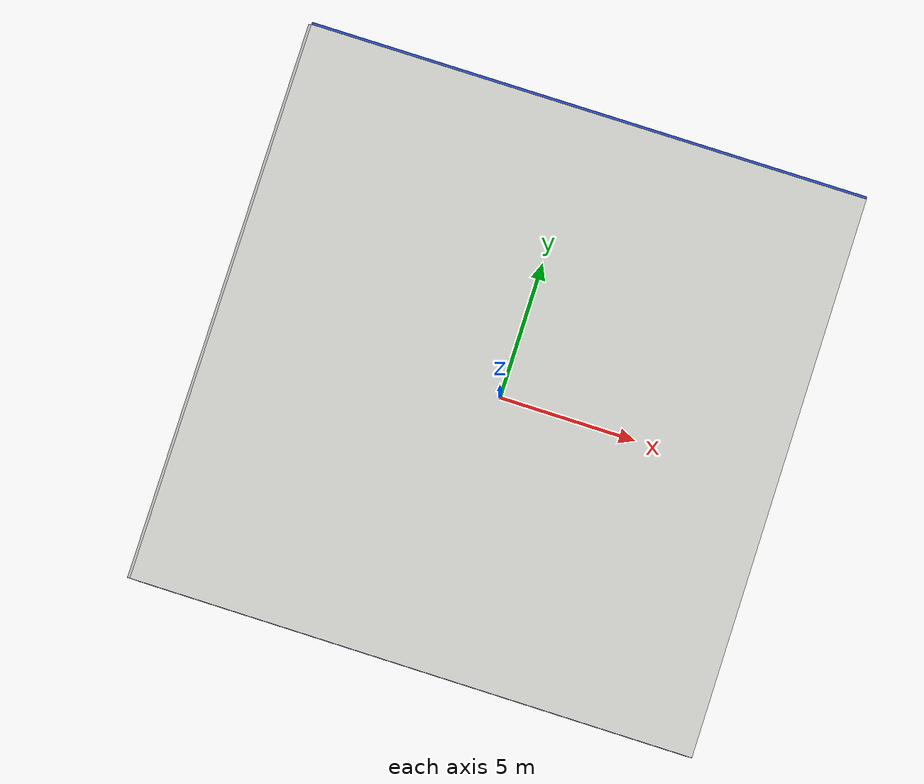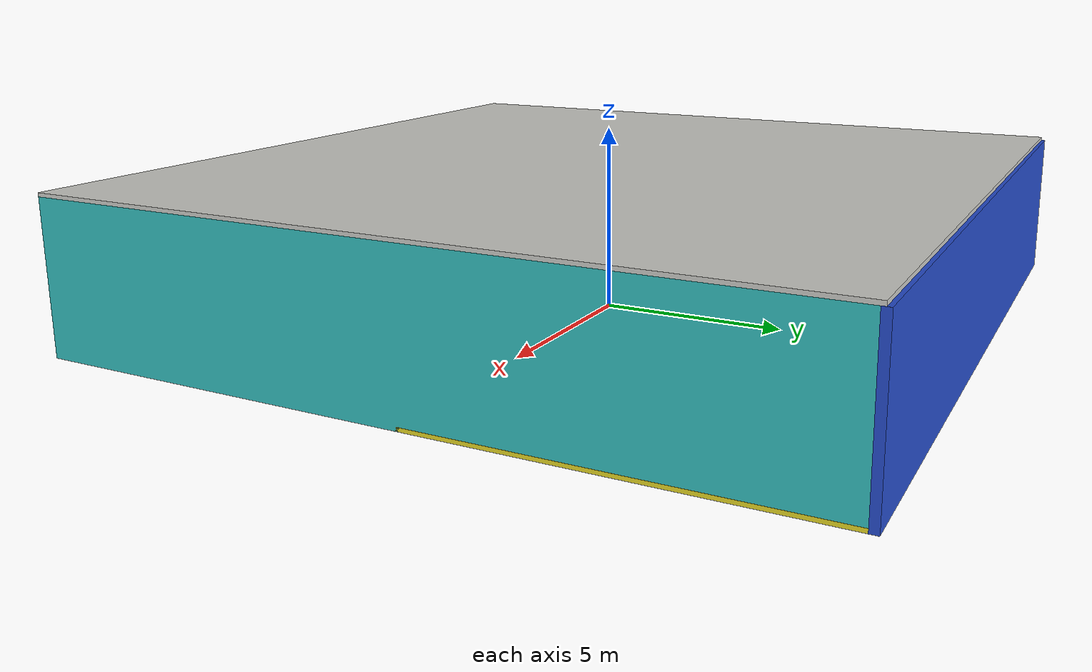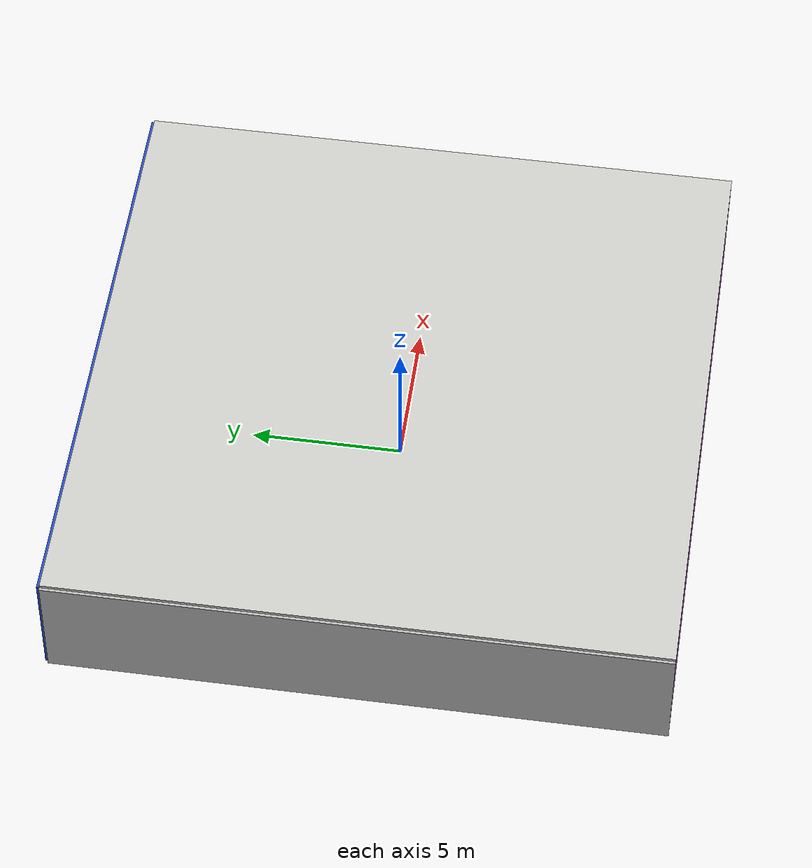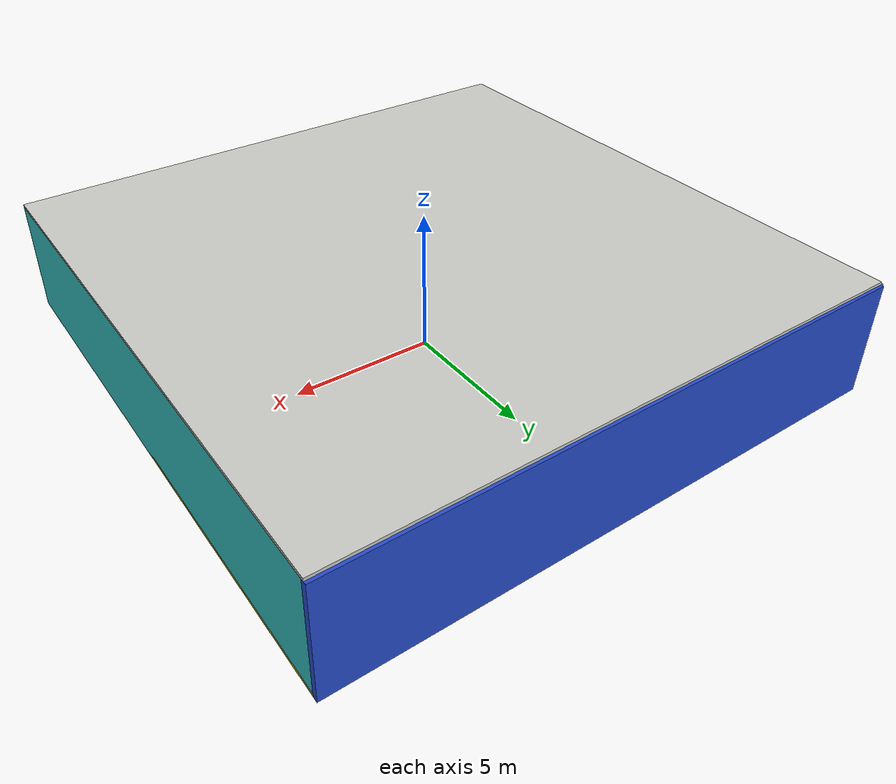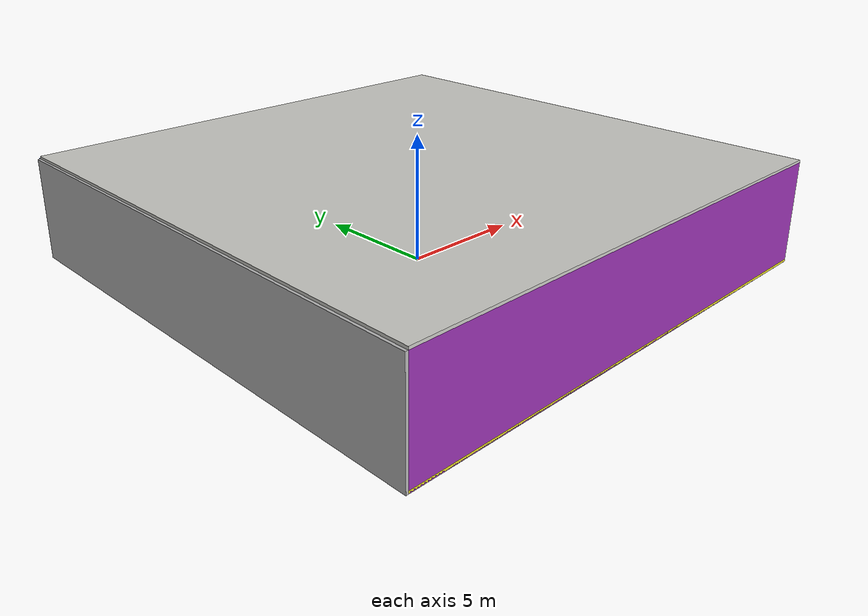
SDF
<sdf version="1.4">
 <world name="default">
  <physics type="ode">
   <max_step_size>0.001</max_step_size>
   <real_time_factor>1</real_time_factor>
   <real_time_update_rate>1000</real_time_update_rate>
   <gravity>0 0 -9.8</gravity>
  </physics>
  <scene><ambient>0.4 0.4 0.4 1</ambient><background>0.7 0.7 0.7 1</background><shadows>1</shadows></scene>
  <model name="Surrounding">
   <static>1</static>
   <link name="Ceiling">
    <collision name="Ceiling_Collision"><geometry><box><size>20 20 0.1</size></box></geometry></collision>
    <visual name="Ceiling_Visual">
     <geometry><box><size>20 20 0.1</size></box></geometry>
     <material>
      <script><uri>file://media/materials/scripts/gazebo.material</uri><name>Gazebo/CeilingTiled</name></script>
     </material>
    </visual>
    <pose>0 0 4.05 0 0 0</pose>
   </link>
   <link name="Wall_South">
    <collision name="Wall_South_Collision">
     <geometry><box><size>20 0 4</size></box></geometry>
     <pose>0 0 2 0 -0 0</pose>
    </collision>
    <visual name="Wall_South_Visual">
     <pose>0 0 2 0 -0 0</pose>
     <geometry><box><size>20 0 4</size></box></geometry>
     <material>
      <script><uri>file://media/materials/scripts/gazebo.material</uri><name>Gazebo/Purple</name></script>
     </material>
    </visual>
    <velocity_decay><linear>0</linear><angular>0</angular></velocity_decay>
    <pose>0 -10 0 0 -0 0</pose>
   </link>
   <link name="Wall_East">
    <collision name="Wall_21_Collision">
     <geometry><box><size>20 0 4</size></box></geometry>
     <pose>0 0 2 0 -0 0</pose>
    </collision>
    <visual name="Wall_21_Visual">
     <pose>0 0 2 0 -0 0</pose>
     <geometry><box><size>20 0 4</size></box></geometry>
     <material>
      <script>
       <uri>file://media/materials/scripts/gazebo.material</uri>
       <name>Gazebo/TurquoiseGlowOutline</name>
      </script>
     </material>
    </visual>
    <velocity_decay><linear>0</linear><angular>0</angular></velocity_decay>
    <pose>10 0 0 0 -0 1.5708</pose>
   </link>
   <link name="Wall_North">
    <collision name="Wall_22_Collision">
     <geometry><box><size>20 0.2 4</size></box></geometry>
     <pose>0 0 2 0 -0 0</pose>
    </collision>
    <visual name="Wall_22_Visual">
     <pose>0 0 2 0 -0 0</pose>
     <geometry><box><size>20 0.2 4</size></box></geometry>
     <material>
      <script><uri>file://media/materials/scripts/gazebo.material</uri><name>Gazebo/Blue</name></script>
     </material>
    </visual>
    <velocity_decay><linear>0</linear><angular>0</angular></velocity_decay>
    <pose>0 10 0 0 -0 0</pose>
   </link>
   <link name="Wall_West">
    <collision name="Wall_23_Collision">
     <geometry><box><size>20 0.2 4</size></box></geometry>
     <pose>0 0 2 0 -0 0</pose>
    </collision>
    <visual name="Wall_23_Visual">
     <pose>0 0 2 0 -0 0</pose>
     <geometry><box><size>20 0.2 4</size></box></geometry>
     <material>
      <script><uri>file://media/materials/scripts/gazebo.material</uri><name>Gazebo/PioneerBody</name></script>
     </material>
    </visual>
    <velocity_decay><linear>0</linear><angular>0</angular></velocity_decay>
    <pose>-10 0 0 0 0 -1.5708</pose>
   </link>
   <link name="Ground_link">
    <collision name="collision">
     <pose>0 0 .05 0 -0 0</pose>
     <geometry><box><size>20 20 0.1</size></box></geometry>
    </collision>
    <visual name="visual">
     <pose>0 0 .05 0 -0 0</pose>
     <geometry><box><size>20 20 0.1</size></box></geometry>
     <material>
      <script><uri>file://media/materials/scripts/gazebo.material</uri><name>Gazebo/YellowGlow</name></script>
     </material>
    </visual>
   </link>
   <static>1</static>
  </model>
  <spherical_coordinates>
   <surface_model>EARTH_WGS84</surface_model>
   <latitude_deg>0</latitude_deg>
   <longitude_deg>0</longitude_deg>
   <elevation>0</elevation>
   <heading_deg>0</heading_deg>
  </spherical_coordinates>
  <light name="lightball_0" type="diffuse">
   <diffuse>0.8 0.8 0.8 1</diffuse>
   <specular>0.2 0.2 0.2 1</specular>
   <attenuation>
    <range>100</range>
    <constant>0.7</constant>
    <linear>0.01</linear>
    <quadratic>0.001</quadratic>
   </attenuation>
   <direction>-0.5 0.1 -0.9</direction>
   <pose>-6.15163465067 6.26785162801 1.5504889499 0 0 0</pose>
  </light>
  <light name="lightball_1" type="diffuse">
   <diffuse>0.8 0.8 0.8 1</diffuse>
   <specular>0.2 0.2 0.2 1</specular>
   <attenuation>
    <range>100</range>
    <constant>0.7</constant>
    <linear>0.01</linear>
    <quadratic>0.001</quadratic>
   </attenuation>
   <direction>-0.5 0.1 -0.9</direction>
   <pose>-3.36927430912 2.75510715056 0.597977758198 0 0 0</pose>
  </light>
  <include>
   <uri>model://robocup_3Dsim_goal</uri>
   <pose>-8.62881665166 -4.69013285859 0 0 0 1.2505541688</pose>
  </include>
  <include><uri>model://cabinet</uri><pose>-8.08183726726 1.24671017523 0 0 0 0.601744146022</pose></include>
  <include><uri>model://table</uri><pose>-8.09896570533 5.52920623762 0 0 0 2.57026606474</pose></include>
  <include>
   <uri>model://robocup_3Dsim_goal</uri>
   <pose>-4.7504643816 -1.55709965269 0 0 0 2.42709451111</pose>
  </include>
  <include><uri>model://cabinet</uri><pose>-1.89331245042 -5.29923934636 0 0 0 2.01507913073</pose></include>
  <include>
   <uri>model://construction_cone</uri>
   <pose>7.33864930665 -7.97963034712 0 0 0 1.37223544437</pose>
  </include>
 </world>
</sdf>

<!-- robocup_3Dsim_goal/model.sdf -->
<sdf version="1.5">
  <model name="robocup_3d_goal">
    <static>true</static>
    <link name="left_post">
      <pose>0 1.05 0.45 0 0 0</pose>
      <collision name="collision">
        <geometry>
          <cylinder>
            <radius>0.05</radius>
            <length>0.9</length>
          </cylinder>
        </geometry>
      </collision>
      <visual name="visual">
        <geometry>
          <cylinder>
            <radius>0.05</radius>
            <length>0.9</length>
          </cylinder>
        </geometry>
        <material>
          <script>
            <uri>file://media/materials/scripts/gazebo.material</uri>
            <name>Gazebo/ZincYellow</name>
          </script>
        </material>
      </visual>
    </link>
    <link name="left_support_horiz_lower">
      <pose>0.30 1.05 0.01 0 0 0</pose>
      <collision name="collision">
        <geometry>
          <box>
            <size>0.50 0.02 0.02</size>
          </box>
        </geometry>
      </collision>
      <visual name="visual">
        <geometry>
          <box>
            <size>0.50 0.02 0.02</size>
          </box>
        </geometry>
        <material>
          <script>
            <uri>file://media/materials/scripts/gazebo.material</uri>
            <name>Gazebo/White</name>
          </script>
        </material>
      </visual>
    </link>
    <link name="left_support_horiz_upper">
      <pose>0.30 1.05 0.79 0 0 0</pose>
      <collision name="collision">
        <geometry>
          <box>
            <size>0.50 0.02 0.02</size>
          </box>
        </geometry>
      </collision>
      <visual name="visual">
        <geometry>
          <box>
            <size>0.50 0.02 0.02</size>
          </box>
        </geometry>
        <material>
          <script>
            <uri>file://media/materials/scripts/gazebo.material</uri>
            <name>Gazebo/White</name>
          </script>
        </material>
      </visual>
    </link>
    <link name="left_support_vertical">
      <pose>0.56 1.05 0.4 0 1.5708 0</pose>
      <collision name="collision">
        <geometry>
          <box>
            <size>0.80 0.02 0.02</size>
          </box>
        </geometry>
      </collision>
      <visual name="visual">
        <geometry>
          <box>
            <size>0.80 0.02 0.02</size>
          </box>
        </geometry>
        <material>
          <script>
            <uri>file://media/materials/scripts/gazebo.material</uri>
            <name>Gazebo/White</name>
          </script>
        </material>
      </visual>
    </link>
    <link name="right_support_horiz_lower">
      <pose>0.30 -1.05 0.01 0 0 0</pose>
      <collision name="collision">
        <geometry>
          <box>
            <size>0.50 0.02 0.02</size>
          </box>
        </geometry>
      </collision>
      <visual name="visual">
        <geometry>
          <box>
            <size>0.50 0.02 0.02</size>
          </box>
        </geometry>
        <material>
          <script>
            <uri>file://media/materials/scripts/gazebo.material</uri>
            <name>Gazebo/White</name>
          </script>
        </material>
      </visual>
    </link>
    <link name="right_support_horiz_upper">
      <pose>0.30 -1.05 0.79 0 0 0</pose>
      <collision name="collision">
        <geometry>
          <box>
            <size>0.50 0.02 0.02</size>
          </box>
        </geometry>
      </collision>
      <visual name="visual">
        <geometry>
          <box>
            <size>0.50 0.02 0.02</size>
          </box>
        </geometry>
        <material>
          <script>
            <uri>file://media/materials/scripts/gazebo.material</uri>
            <name>Gazebo/White</name>
          </script>
        </material>
      </visual>
    </link>
    <link name="right_support_vertical">
      <pose>0.56 -1.05 0.4 0 1.5708 0</pose>
      <collision name="collision">
        <geometry>
          <box>
            <size>0.80 0.02 0.02</size>
          </box>
        </geometry>
      </collision>
      <visual name="visual">
        <geometry>
          <box>
            <size>0.80 0.02 0.02</size>
          </box>
        </geometry>
        <material>
          <script>
            <uri>file://media/materials/scripts/gazebo.material</uri>
            <name>Gazebo/White</name>
          </script>
        </material>
      </visual>
    </link>
    <link name="center_support_horiz_lower">
      <pose>0.56 0 0.01 0 1.5708 0</pose>
      <collision name="collision">
        <geometry>
          <box>
            <size>0.02 2.08 0.02</size>
          </box>
        </geometry>
      </collision>
      <visual name="visual">
        <geometry>
          <box>
            <size>0.02 2.08 0.02</size>
          </box>
        </geometry>
        <material>
          <script>
            <uri>file://media/materials/scripts/gazebo.material</uri>
            <name>Gazebo/White</name>
          </script>
        </material>
      </visual>
    </link>
    <link name="center_support_horiz_upper">
      <pose>0.56 0 0.79 0 1.5708 0</pose>
      <collision name="collision">
        <geometry>
          <box>
            <size>0.02 2.08 0.02</size>
          </box>
        </geometry>
      </collision>
      <visual name="visual">
        <geometry>
          <box>
            <size>0.02 2.08 0.02</size>
          </box>
        </geometry>
        <material>
          <script>
            <uri>file://media/materials/scripts/gazebo.material</uri>
            <name>Gazebo/White</name>
          </script>
        </material>
      </visual>
    </link>
    <link name="right_post">
      <pose>0 -1.05 0.45 0 0 0</pose>
      <collision name="collision">
        <geometry>
          <cylinder>
            <radius>0.05</radius>
            <length>0.9</length>
          </cylinder>
        </geometry>
      </collision>
      <visual name="visual">
        <geometry>
          <cylinder>
            <radius>0.05</radius>
            <length>0.9</length>
          </cylinder>
        </geometry>
        <material>
          <script>
            <uri>file://media/materials/scripts/gazebo.material</uri>
            <name>Gazebo/ZincYellow</name>
          </script>
        </material>
      </visual>
    </link>
    <link name="crossbar">
      <pose>0 0 0.85 1.57 1.57 0</pose>
      <collision name="collision">
        <geometry>
          <cylinder>
            <radius>0.05</radius>
            <length>2.0</length>
          </cylinder>
        </geometry>
      </collision>
      <visual name="visual">
        <geometry>
          <cylinder>
            <radius>0.05</radius>
            <length>2.0</length>
          </cylinder>
        </geometry>
        <material>
          <script>
            <uri>file://media/materials/scripts/gazebo.material</uri>
            <name>Gazebo/ZincYellow</name>
          </script>
        </material>
      </visual>
    </link>
    <link name="center_net">
      <pose>0.56 0 0.40 0 0 0</pose>
      <collision name="collision">
        <geometry>
          <box>
            <size>0.01 2.1 0.80</size>
          </box>
        </geometry>
      </collision>
      <visual name="visual">
        <geometry>
          <box>
            <size>0.01 2.1 0.80</size>
          </box>
        </geometry>
        <material>
          <script>
            <uri>model://../model_source/models/robocup09_spl_field/materials/scripts/</uri>
            <uri>model://../model_source/models/robocup09_spl_field/materials/textures/</uri>
            <name>RoboCup/Net</name>
          </script>
        </material>
      </visual>
    </link>
    <link name="left_net">
      <pose>0.30 1.05 0.40 0 0 0</pose>
      <collision name="collision">
        <geometry>
          <box>
            <size>0.50 0.01 0.76</size>
          </box>
        </geometry>
      </collision>
      <visual name="visual">
        <geometry>
          <box>
            <size>0.50 0.01 0.76</size>
          </box>
        </geometry>
        <material>
          <script>
            <uri>model://../model_source/models/robocup09_spl_field/materials/scripts/</uri>
            <uri>model://../model_source/models/robocup09_spl_field/materials/textures/</uri>
            <name>RoboCup/Net</name>
          </script>
        </material>
      </visual>
    </link>
    <link name="right_net">
      <pose>0.30 -1.05 0.40 0 0 0</pose>
      <collision name="collision">
        <geometry>
          <box>
            <size>0.50 0.01 0.76</size>
          </box>
        </geometry>
      </collision>
      <visual name="visual">
        <geometry>
          <box>
            <size>0.50 0.01 0.76</size>
          </box>
        </geometry>
        <material>
          <script>
            <uri>model://../model_source/models/robocup09_spl_field/materials/scripts/</uri>
            <uri>model://../model_source/models/robocup09_spl_field/materials/textures/</uri>
            <name>RoboCup/Net</name>
          </script>
        </material>
      </visual>
    </link>
  </model>
</sdf>

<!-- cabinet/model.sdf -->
<sdf version="1.5">
  <model name="cabinet">
    <static>true</static>
    <link name="cabinet_bottom_plate">
      <inertial>
        <pose>0 0 -1 0 0 0</pose>
        <inertia>
          <ixx>2.050000</ixx>
          <ixy>0</ixy>
          <ixz>0</ixz>
          <iyy>2.050000</iyy>
          <iyz>0</iyz>
          <izz>2.050000</izz>
        </inertia>
        <mass>25.000000</mass>
      </inertial>
      <collision name="cabinet_bottom_plate_geom">
        <pose>0 0 0.010000 0 0 0</pose>
        <geometry>
          <box>
            <size>0.450000 0.450000 0.020000</size>
          </box>
        </geometry>
      </collision>
      <visual name="cabinet_bottom_plate_geom_visual">
        <pose>0 0 0.010000 0 0 0</pose>
        <geometry>
          <box>
            <size>0.450000 0.450000 0.020000</size>
          </box>
        </geometry>
        <material>
          <script>
            <uri>model://media/materials/scripts/gazebo.material</uri>
            <name>Gazebo/Wood</name>
          </script>
        </material>
      </visual>
      <collision name="cabinet_bottom_plate_geom_cabinet_back_plate">
        <pose>0.235000 0 0.510000 0 0 0</pose>
        <geometry>
          <box>
            <size>0.020000 0.450000 1.020000</size>
          </box>
        </geometry>
      </collision>
      <visual name="cabinet_bottom_plate_geom_cabinet_back_plate_visual">
        <pose>0.235000 0 0.510000 0 0 0</pose>
        <geometry>
          <box>
            <size>0.020000 0.450000 1.020000</size>
          </box>
        </geometry>
        <material>
          <script>
            <uri>model://media/materials/scripts/gazebo.material</uri>
            <name>Gazebo/Wood</name>
          </script>
        </material>
      </visual>
      <collision name="cabinet_bottom_plate_geom_cabinet_left_plate">
        <pose>0 0.235000 0.510000 0 0 0</pose>
        <geometry>
          <box>
            <size>0.450000 0.020000 1.020000</size>
          </box>
        </geometry>
      </collision>
      <visual name="cabinet_bottom_plate_geom_cabinet_left_plate_visual">
        <pose>0 0.235000 0.510000 0 0 0</pose>
        <geometry>
          <box>
            <size>0.450000 0.020000 1.020000</size>
          </box>
        </geometry>
        <material>
          <script>
            <uri>model://media/materials/scripts/gazebo.material</uri>
            <name>Gazebo/Wood</name>
          </script>
        </material>
      </visual>
      <collision name="cabinet_bottom_plate_geom_cabinet_middle_plate">
        <pose>0 0 0.510000 0 0 0</pose>
        <geometry>
          <box>
            <size>0.450000 0.450000 0.020000</size>
          </box>
        </geometry>
      </collision>
      <visual name="cabinet_bottom_plate_geom_cabinet_middle_plate_visual">
        <pose>0 0 0.510000 0 0 0</pose>
        <geometry>
          <box>
            <size>0.450000 0.450000 0.020000</size>
          </box>
        </geometry>
        <material>
          <script>
            <uri>model://media/materials/scripts/gazebo.material</uri>
            <name>Gazebo/Wood</name>
          </script>
        </material>
      </visual>
      <collision name="cabinet_bottom_plate_geom_cabinet_right_plate">
        <pose>0 -0.235000 0.510000 0 0 0</pose>
        <geometry>
          <box>
            <size>0.450000 0.020000 1.020000</size>
          </box>
        </geometry>
      </collision>
      <visual name="cabinet_bottom_plate_geom_cabinet_right_plate_visual">
        <pose>0 -0.235000 0.510000 0 0 0</pose>
        <geometry>
          <box>
            <size>0.450000 0.020000 1.020000</size>
          </box>
        </geometry>
        <material>
          <script>
            <uri>model://media/materials/scripts/gazebo.material</uri>
            <name>Gazebo/Wood</name>
          </script>
        </material>
      </visual>
      <collision name="cabinet_bottom_plate_geom_cabinet_top_plate">
        <pose>0 0 1.010000 0 0 0</pose>
        <geometry>
          <box>
            <size>0.450000 0.450000 0.020000</size>
          </box>
        </geometry>
      </collision>
      <visual name="cabinet_bottom_plate_geom_cabinet_top_plate_visual">
        <pose>0 0 1.010000 0 0 0</pose>
        <geometry>
          <box>
            <size>0.450000 0.450000 0.020000</size>
          </box>
        </geometry>
        <material>
          <script>
            <uri>model://media/materials/scripts/gazebo.material</uri>
            <name>Gazebo/Wood</name>
          </script>
        </material>
      </visual>
    </link>
  </model>
</sdf>

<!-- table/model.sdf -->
<sdf version="1.5">
  <model name="table">
    <static>true</static>
    <link name="link">
      <collision name="surface">
        <pose>0 0 1.0 0 0 0</pose>
        <geometry>
          <box>
            <size>1.5 0.8 0.03</size>
          </box>
        </geometry>
        <surface>
          <friction>
            <ode>
              <mu>0.6</mu>
              <mu2>0.6</mu2>
            </ode>
          </friction>
        </surface>
      </collision>
      <visual name="visual1">
        <pose>0 0 1.0 0 0 0</pose>
        <geometry>
          <box>
            <size>1.5 0.8 0.03</size>
          </box>
        </geometry>
        <material>
          <script>
            <uri>model://media/materials/scripts/gazebo.material</uri>
            <name>Gazebo/Wood</name>
          </script>
        </material>
      </visual>
      <collision name="front_left_leg">
        <pose>0.68 0.38 0.5 0 0 0</pose>
        <geometry>
          <cylinder>
            <radius>0.02</radius>
            <length>1.0</length>
          </cylinder>
        </geometry>
      </collision>
      <visual name="front_left_leg">
        <pose>0.68 0.38 0.5 0 0 0</pose>
        <geometry>
          <cylinder>
            <radius>0.02</radius>
            <length>1.0</length>
          </cylinder>
        </geometry>
        <material>
          <script>
            <uri>model://media/materials/scripts/gazebo.material</uri>
            <name>Gazebo/Grey</name>
          </script>
        </material>
      </visual>
      <collision name="front_right_leg">
        <pose>0.68 -0.38 0.5 0 0 0</pose>
        <geometry>
          <cylinder>
            <radius>0.02</radius>
            <length>1.0</length>
          </cylinder>
        </geometry>
      </collision>
      <visual name="front_right_leg">
        <pose>0.68 -0.38 0.5 0 0 0</pose>
        <geometry>
          <cylinder>
            <radius>0.02</radius>
            <length>1.0</length>
          </cylinder>
        </geometry>
        <material>
          <script>
            <uri>model://media/materials/scripts/gazebo.material</uri>
            <name>Gazebo/Grey</name>
          </script>
        </material>
      </visual>
      <collision name="back_right_leg">
        <pose>-0.68 -0.38 0.5 0 0 0</pose>
        <geometry>
          <cylinder>
            <radius>0.02</radius>
            <length>1.0</length>
          </cylinder>
        </geometry>
      </collision>
      <visual name="back_right_leg">
        <pose>-0.68 -0.38 0.5 0 0 0</pose>
        <geometry>
          <cylinder>
            <radius>0.02</radius>
            <length>1.0</length>
          </cylinder>
        </geometry>
        <material>
          <script>
            <uri>model://media/materials/scripts/gazebo.material</uri>
            <name>Gazebo/Grey</name>
          </script>
        </material>
      </visual>
      <collision name="back_left_leg">
        <pose>-0.68 0.38 0.5 0 0 0</pose>
        <geometry>
          <cylinder>
            <radius>0.02</radius>
            <length>1.0</length>
          </cylinder>
        </geometry>
      </collision>
      <visual name="back_left_leg">
        <pose>-0.68 0.38 0.5 0 0 0</pose>
        <geometry>
          <cylinder>
            <radius>0.02</radius>
            <length>1.0</length>
          </cylinder>
        </geometry>
        <material>
          <script>
            <uri>model://media/materials/scripts/gazebo.material</uri>
            <name>Gazebo/Grey</name>
          </script>
        </material>
      </visual>
    </link>
  </model>
</sdf>

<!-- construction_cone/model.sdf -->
<sdf version="1.5">
  <model name="Construction Cone">
    <link name="link">
      <collision name="collision">
        <geometry>
          <mesh>
            <scale>10 10 10</scale>
            <uri>file://isr-testbed/construction_cone/meshes/construction_cone.dae</uri>
          </mesh>
        </geometry>
      </collision>
      <visual name="visual">
        <geometry>
          <mesh>
            <scale>10 10 10</scale>
            <uri>file://isr-testbed/construction_cone/meshes/construction_cone.dae</uri>
          </mesh>
        </geometry>
      </visual>
    </link>
  </model>
</sdf>
